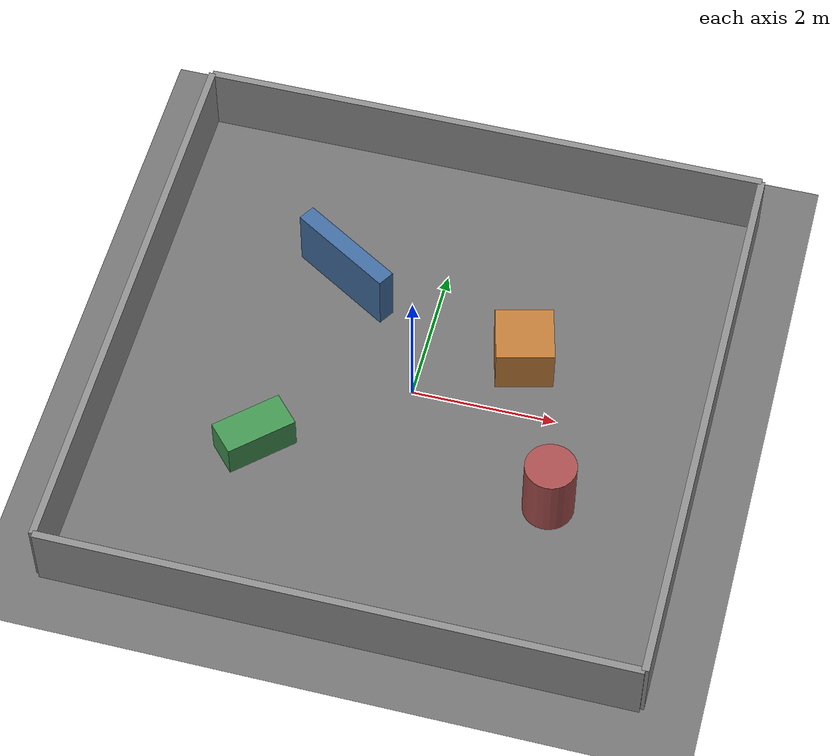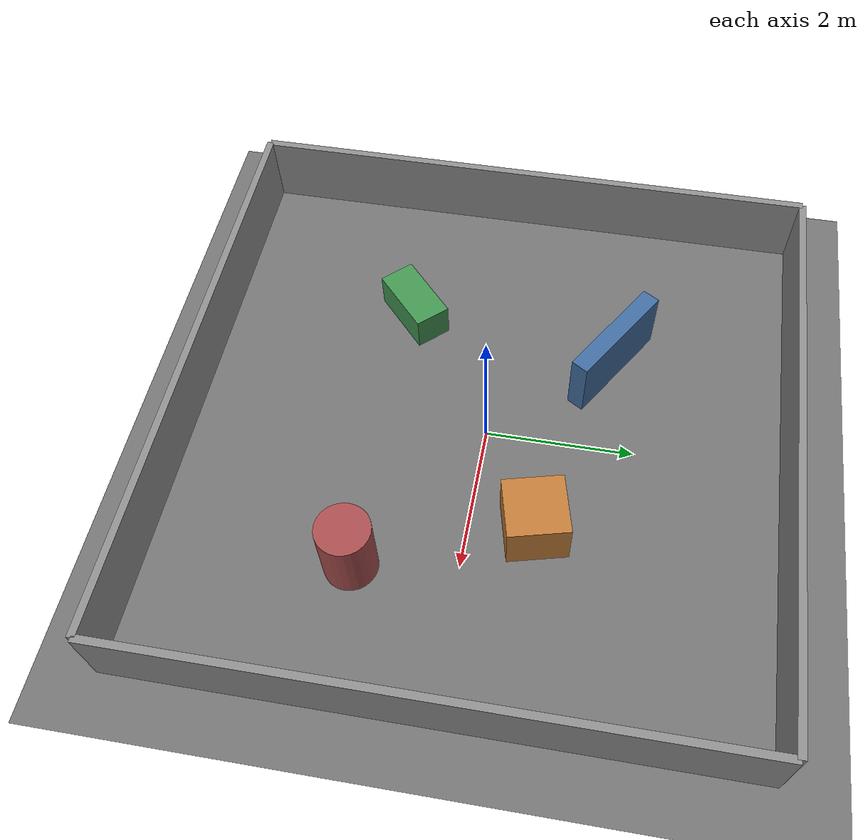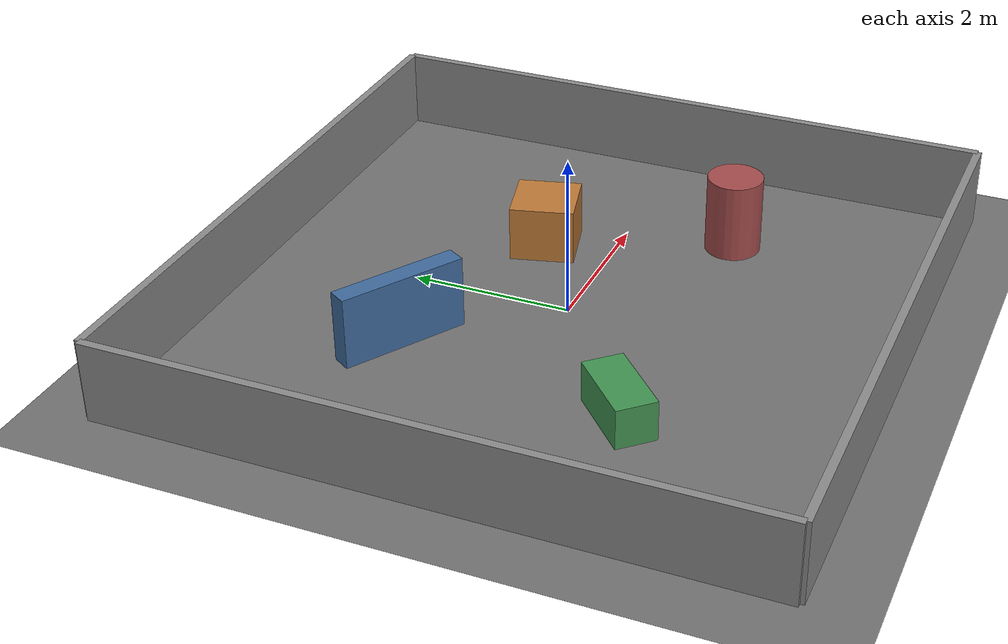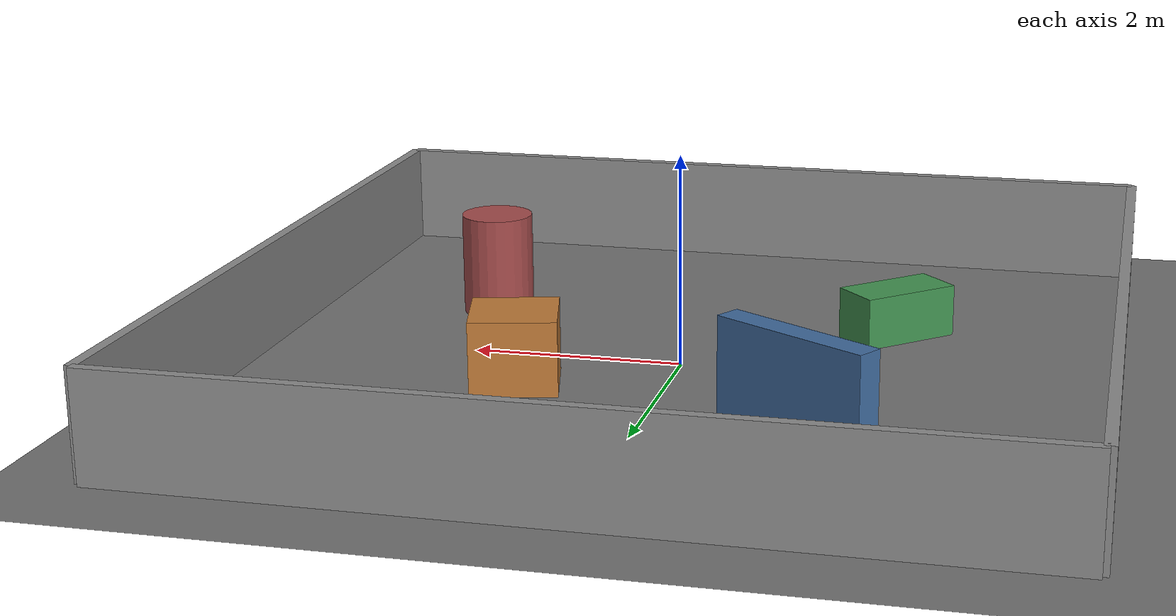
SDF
<?xml version="1.0" ?>
<sdf version="1.10">
  <world name="empty">
    <scene>
      <ambient>0.7 0.7 0.7 1</ambient>
      <background>0.8 0.8 0.8 1</background>
      <grid>true</grid>
    </scene>

    <physics name="1ms" type="ignored">
      <max_step_size>0.001</max_step_size>
      <real_time_factor>1.0</real_time_factor>
    </physics>

    <plugin
      filename="gz-sim-physics-system"
      name="gz::sim::systems::Physics">
    </plugin>
    <plugin
      filename="gz-sim-user-commands-system"
      name="gz::sim::systems::UserCommands">
    </plugin>
    <plugin
      filename="gz-sim-scene-broadcaster-system"
      name="gz::sim::systems::SceneBroadcaster">
    </plugin>
    <plugin
      filename="gz-sim-imu-system"
      name="gz::sim::systems::Imu">
    </plugin>
    <plugin
      filename="gz-sim-navsat-system"
      name="gz::sim::systems::NavSat">
    </plugin>
    <plugin
      filename="gz-sim-sensors-system"
      name="gz::sim::systems::Sensors">
      <render_engine>ogre2</render_engine>
    </plugin>

    <spherical_coordinates>
      <surface_model>EARTH_WGS84</surface_model>
      <world_frame_orientation>ENU</world_frame_orientation>
      <latitude_deg>45.8150</latitude_deg>
      <longitude_deg>15.9819</longitude_deg>
      <elevation>120.0</elevation>
      <heading_deg>0</heading_deg>
    </spherical_coordinates>

    <light type="directional" name="sun">
      <cast_shadows>true</cast_shadows>
      <pose>0 0 10 0 0 0</pose>
      <diffuse>0.8 0.8 0.8 1</diffuse>
      <specular>0.2 0.2 0.2 1</specular>
      <attenuation>
        <range>1000</range>
        <constant>0.9</constant>
        <linear>0.01</linear>
        <quadratic>0.001</quadratic>
      </attenuation>
      <direction>-0.5 0.1 -0.9</direction>
    </light>

    <model name="ground_plane">
      <static>true</static>
      <link name="link">
        <collision name="collision">
          <geometry>
            <plane>
              <normal>0 0 1</normal>
              <size>100 100</size>
            </plane>
          </geometry>
        </collision>
        <visual name="visual">
          <geometry>
            <plane>
              <normal>0 0 1</normal>
              <size>100 100</size>
            </plane>
          </geometry>
          <material>
            <ambient>0.45 0.45 0.45 1</ambient>
            <diffuse>0.45 0.45 0.45 1</diffuse>
            <specular>0.05 0.05 0.05 1</specular>
          </material>
        </visual>
      </link>
    </model>

    <model name="navigation_test_walls">
      <static>true</static>
      <link name="north_wall">
        <pose>0 4 0.5 0 0 0</pose>
        <collision name="collision">
          <geometry>
            <box>
              <size>8 0.1 1.0</size>
            </box>
          </geometry>
        </collision>
        <visual name="visual">
          <geometry>
            <box>
              <size>8 0.1 1.0</size>
            </box>
          </geometry>
          <material>
            <ambient>0.25 0.25 0.25 1</ambient>
            <diffuse>0.55 0.55 0.55 1</diffuse>
          </material>
        </visual>
      </link>
      <link name="south_wall">
        <pose>0 -4 0.5 0 0 0</pose>
        <collision name="collision">
          <geometry>
            <box>
              <size>8 0.1 1.0</size>
            </box>
          </geometry>
        </collision>
        <visual name="visual">
          <geometry>
            <box>
              <size>8 0.1 1.0</size>
            </box>
          </geometry>
          <material>
            <ambient>0.25 0.25 0.25 1</ambient>
            <diffuse>0.55 0.55 0.55 1</diffuse>
          </material>
        </visual>
      </link>
      <link name="east_wall">
        <pose>4 0 0.5 0 0 0</pose>
        <collision name="collision">
          <geometry>
            <box>
              <size>0.1 8 1.0</size>
            </box>
          </geometry>
        </collision>
        <visual name="visual">
          <geometry>
            <box>
              <size>0.1 8 1.0</size>
            </box>
          </geometry>
          <material>
            <ambient>0.25 0.25 0.25 1</ambient>
            <diffuse>0.55 0.55 0.55 1</diffuse>
          </material>
        </visual>
      </link>
      <link name="west_wall">
        <pose>-4 0 0.5 0 0 0</pose>
        <collision name="collision">
          <geometry>
            <box>
              <size>0.1 8 1.0</size>
            </box>
          </geometry>
        </collision>
        <visual name="visual">
          <geometry>
            <box>
              <size>0.1 8 1.0</size>
            </box>
          </geometry>
          <material>
            <ambient>0.25 0.25 0.25 1</ambient>
            <diffuse>0.55 0.55 0.55 1</diffuse>
          </material>
        </visual>
      </link>
    </model>

    <model name="navigation_test_obstacles">
      <static>true</static>
      <link name="low_crate">
        <pose>1.35 0.85 0.35 0 0 0.25</pose>
        <collision name="collision">
          <geometry>
            <box>
              <size>0.8 0.8 0.7</size>
            </box>
          </geometry>
        </collision>
        <visual name="visual">
          <geometry>
            <box>
              <size>0.8 0.8 0.7</size>
            </box>
          </geometry>
          <material>
            <ambient>0.55 0.34 0.16 1</ambient>
            <diffuse>0.75 0.48 0.22 1</diffuse>
            <specular>0.05 0.04 0.03 1</specular>
          </material>
        </visual>
      </link>

      <link name="angled_barrier">
        <pose>-1.35 1.55 0.45 0 0 -0.55</pose>
        <collision name="collision">
          <geometry>
            <box>
              <size>1.6 0.25 0.9</size>
            </box>
          </geometry>
        </collision>
        <visual name="visual">
          <geometry>
            <box>
              <size>1.6 0.25 0.9</size>
            </box>
          </geometry>
          <material>
            <ambient>0.18 0.30 0.45 1</ambient>
            <diffuse>0.25 0.42 0.62 1</diffuse>
            <specular>0.04 0.06 0.08 1</specular>
          </material>
        </visual>
      </link>

      <link name="round_column">
        <pose>2.2 -1.35 0.5 0 0 0</pose>
        <collision name="collision">
          <geometry>
            <cylinder>
              <radius>0.35</radius>
              <length>1.0</length>
            </cylinder>
          </geometry>
        </collision>
        <visual name="visual">
          <geometry>
            <cylinder>
              <radius>0.35</radius>
              <length>1.0</length>
            </cylinder>
          </geometry>
          <material>
            <ambient>0.45 0.20 0.20 1</ambient>
            <diffuse>0.65 0.30 0.30 1</diffuse>
            <specular>0.06 0.03 0.03 1</specular>
          </material>
        </visual>
      </link>

      <link name="short_block">
        <pose>-1.85 -1.35 0.25 0 0 0.75</pose>
        <collision name="collision">
          <geometry>
            <box>
              <size>1.0 0.5 0.5</size>
            </box>
          </geometry>
        </collision>
        <visual name="visual">
          <geometry>
            <box>
              <size>1.0 0.5 0.5</size>
            </box>
          </geometry>
          <material>
            <ambient>0.18 0.42 0.22 1</ambient>
            <diffuse>0.26 0.58 0.32 1</diffuse>
            <specular>0.03 0.06 0.03 1</specular>
          </material>
        </visual>
      </link>
    </model>
  </world>
</sdf>
